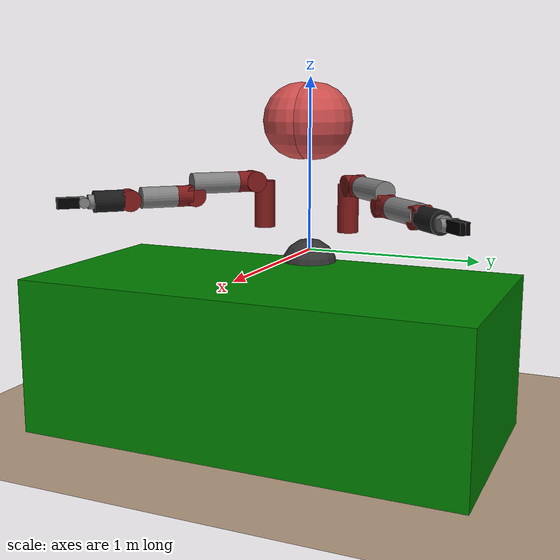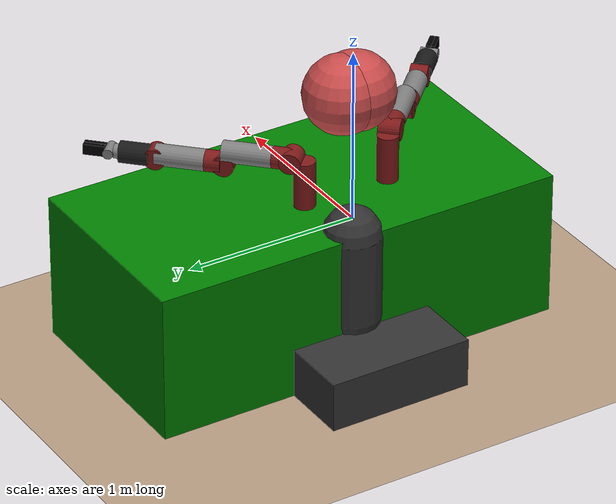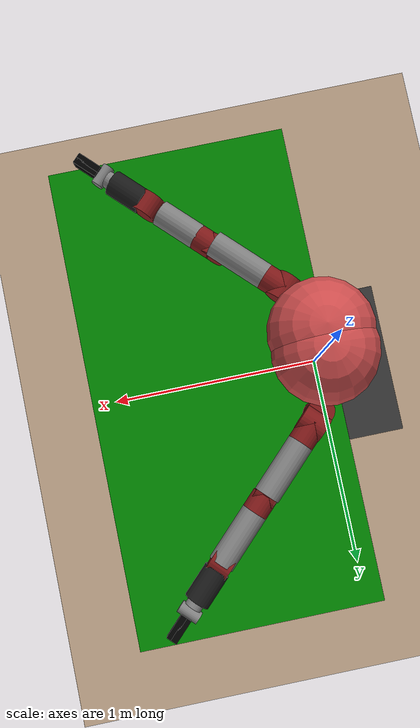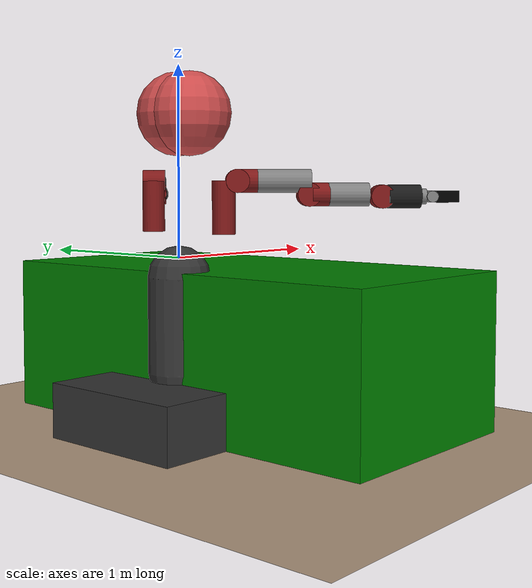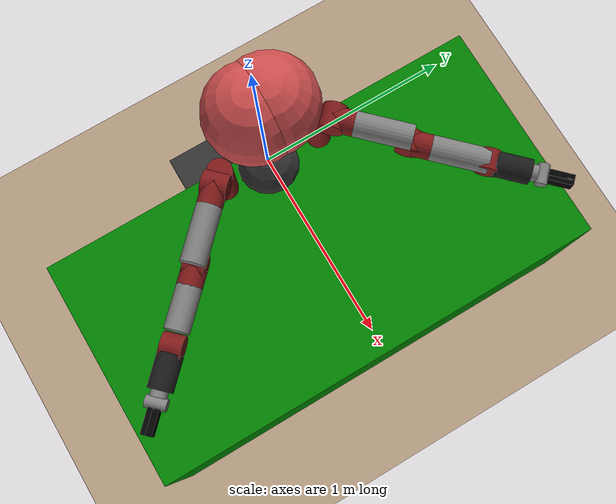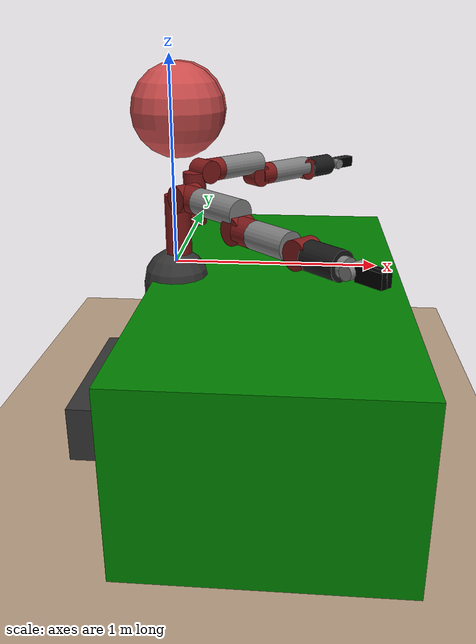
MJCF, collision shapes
<mujoco model="baxter">
  <size nconmax="250" njmax="795" nstack="631875" />
  <asset>
    <mesh file="robot_info/meshes/baxter/torso/base_link.STL" name="base_link" />
    <mesh file="robot_info/meshes/baxter/torso/base_link_collision.STL" name="base_link_collision" />
    <mesh file="robot_info/meshes/baxter/base/PEDESTAL.STL" name="PEDESTAL" />
    <mesh file="robot_info/meshes/baxter/base/pedestal_link_collision.STL" name="pedestal_link_collision" />
    <mesh file="robot_info/meshes/baxter/head/H0.STL" name="H0" />
    <mesh file="robot_info/meshes/baxter/head/H1.STL" name="H1" />
    <mesh file="robot_info/meshes/baxter/upper_shoulder/S0.STL" name="S0" />
    <mesh file="robot_info/meshes/baxter/lower_shoulder/S1.STL" name="S1" />
    <mesh file="robot_info/meshes/baxter/upper_elbow/E0.STL" name="E0" />
    <mesh file="robot_info/meshes/baxter/lower_elbow/E1.STL" name="E1" />
    <mesh file="robot_info/meshes/baxter/upper_forearm/W0.STL" name="W0" />
    <mesh file="robot_info/meshes/baxter/lower_forearm/W1.STL" name="W1" />
    <mesh file="robot_info/meshes/baxter/wrist/W2.STL" name="W2" />
    <mesh file="robot_info/meshes/baxter/electric_gripper/fingers/paddle_tip.STL" name="paddle_tip" />
    <mesh file="robot_info/meshes/baxter/electric_gripper/fingers/half_round_tip.STL" name="half_round_tip" />
    <mesh file="robot_info/meshes/baxter/electric_gripper/electric_gripper_base.STL" name="electric_gripper_base" />
    <mesh file="robot_info/meshes/baxter/electric_gripper/fingers/extended_narrow.STL" name="extended_narrow" />

  </asset>

  <visual>
    <map fogend="3" fogstart="1.5" />
    <quality shadowsize="2048" />
  </visual>

  <default>
    <default class="viz">
      <geom conaffinity="0" contype="0" group="1" margin="0.001" type="mesh" />
    </default>
    <geom condim="6" solimp="0.99 0.99 0.01" solref="0.01 1" />
  </default>

  <contact>
    <exclude body1="right_upper_shoulder" body2="torso" />
    <exclude body1="right_upper_shoulder" body2="right_upper_elbow" />
    <exclude body1="right_lower_shoulder" body2="torso" />
    <exclude body1="left_upper_shoulder" body2="torso" />
    <exclude body1="left_upper_shoulder" body2="left_upper_elbow" />
    <exclude body1="left_lower_shoulder" body2="torso" />
    <exclude body1="collision_head_link_1" body2="torso" />
    <exclude body1="collision_head_link_2" body2="torso" />
    <exclude body1="table" body2="torso" />
    <exclude body1="table" body2="pedestal" />
  </contact>

  <equality>
  </equality>

  <worldbody>
    <light ambient="0 0 0" cutoff="90" diffuse="1 1 1" dir="-1 0 -2.5" directional="false" exponent="1" pos="1 0 1.5" specular="0 0 0" />
    <geom name="ground" pos="0 0 -0.925" rgba="0.7 0.6 0.5 1" size="4 4 .05" type="plane" />
    <camera name="overhead_camera" pos="0.5 0.0 1.75" quat="0.707 0 0 -0.707" />

    <camera name="forward_camera" pos="2.5 0.0 0.35" quat="0.5 0.5 0.5 0.5" />

    <body name="base" pos="0 0 0">
      <inertial diaginertia="0.001 0.001 0.001" mass="10" pos="0 0 0" />
      <body name="collision_head_link_1" pos="0.11 0 0.75">
        <inertial diaginertia="1e-008 1e-008 1e-008" mass="0.0001" pos="0 0 0" />
        <geom class="viz" margin="0.001" pos="0 0 0" rgba="0.8 0.3 0.3 0.3" size="0.001" type="sphere" />
        <geom margin="0.001" pos="-0.07 -0.04 0" rgba="0.8 0.3 0.3 0.3" size="0.22" type="sphere" />
      </body>
      <body name="collision_head_link_2" pos="0.11 0 0.75">
        <inertial diaginertia="1e-008 1e-008 1e-008" mass="0.0001" pos="0 0 0" />
        <geom margin="0.001" pos="0 0 0" rgba="0.8 0.3 0.3 0.3" size="0.001" type="sphere" />
        <geom margin="0.001" pos="-0.07 0.04 0" rgba="0.8 0.3 0.3 0.3" size="0.22" type="sphere" />
      </body>
      <body name="torso" pos="0 0 0">
        <inertial diaginertia="1.87139 1.66268 0.779991" mass="35.3365" pos="0 0 0" quat="0.997433 0.00167178 0.0715546 -0.00209003" />
        <geom class="viz" margin="0.001" mesh="base_link" />
        <geom class="viz" margin="0.001" mesh="base_link_collision" type="mesh" />
        <body name="pedestal" pos="0 0 0">
          <inertial diaginertia="6.0869 5.81635 4.20915" mass="60.864" pos="0 0 0" quat="0.659267 -0.259505 -0.260945 0.655692" />
          <geom class="viz" margin="0.001" mesh="PEDESTAL" rgba="0.2 0.2 0.2 1" />
          <geom margin="0.001" pos="-.04 0 -.8" rgba="0.2 0.2 0.2 1" size=".46 .425 .16" type="box" />
          <geom margin="0.001" pos="0 0 -.35" rgba="0.2 0.2 0.2 1" size=".165 .25" type="capsule" />
        </body>
        <body name="head" pos="0.06 0 0.686">
          <inertial diaginertia="0.00474065 0.00461087 0.00199949" mass="0.547767" pos="0 0 0" quat="0.339345 0.850736 -0.347392 0.201027" />
          <joint armature=".01" axis="0 0 1" damping="0" limited="true" name="head_pan" pos="0 0 0" range="-1.5708 1.5708" type="hinge" />
          <geom class="viz" margin="0.001" mesh="H0" rgba="0.2 0.2 0.2 1" />
          <body name="screen" pos="0.1227 0 0" quat="0.453099 0.542864 0.542864 0.453099">
            <inertial diaginertia="0.0040484 0.00275826 0.00150834" mass="0.440171" pos="0 0 0" quat="0.995785 0.0113501 -0.000390852 0.0910132" />
            <geom class="viz" euler="0 -1.57 0" margin="0.001" mesh="H1" pos="0 0 -.03" rgba="0.5 0.1 0.1 1" />
            <geom class="viz" margin="0.001" name="display" pos="0 -0.016 0" quat="0.991445 0.130526 0 0" rgba=".9 .9 .9 1" size="0.109 0.08 0.002" type="box" />
          </body>
        </body>
        <body name="right_arm_mount" pos="0.024645 -0.219645 0.118588" quat="0.923879 0 0 -0.382684">
          <inertial diaginertia="1e-008 1e-008 1e-008" mass="0.0001" pos="0 0 0" />
          <body name="right_upper_shoulder" pos="0.055695 0 0.011038">
            <inertial diaginertia="0.0498344 0.0377511 0.0331351" mass="5.70044" pos="0.01783 0.00086 0.19127" quat="0.975667 0.0673303 -0.206117 0.0325173" />
            <joint armature=".01" axis="0 0 1" damping="0" limited="true" name="right_s0" pos="0 0 0" range="-1.70168 1.70168" type="hinge" />
            <geom class="viz" margin="0.001" mesh="S0" rgba="0.5 0.1 0.1 1" />
            <geom margin="0.001" pos="0 0 0.1361" rgba="0.5 0.1 0.1 1" size="0.06 0.1361" type="cylinder" />
            <body name="right_lower_shoulder" pos="0.069 0 0.27035" quat="0.707107 -0.707107 0 0">
              <inertial diaginertia="0.0278991 0.0212327 0.0112937" mass="3.22698" pos="0.06845 0.00269 -0.00529" quat="0.447487 0.536948 0.56425 0.439391" />
              <joint armature=".01" axis="0 0 1" damping="0" limited="true" name="right_s1" pos="0 0 0" range="-2.147 1.047" type="hinge" />
              <geom class="viz" margin="0.001" mesh="S1" rgba="0.5 0.1 0.1 1" />
              <geom margin="0.001" pos="0 0 0" rgba="0.5 0.1 0.1 1" size="0.06 0.06" type="cylinder" />
              <body name="right_upper_elbow" pos="0.102 0 0" quat="0.5 0.5 0.5 0.5">
                <inertial diaginertia="0.0287695 0.0273625 0.011409" mass="4.31272" pos="-0.00276 0.00132 0.18086" quat="0.838995 -0.0423128 -0.121287 0.52876" />
                <joint armature=".01" axis="0 0 1" damping="0" limited="true" name="right_e0" pos="0 0 0" range="-3.05418 3.05418" type="hinge" />
                <geom class="viz" margin="0.001" mesh="E0" rgba="0.5 0.1 0.1 1" />
                <geom margin="0.001" pos="0 0 -0.0535" rgba="0.5 0.1 0.1 1" size="0.06 0.0535" type="cylinder" />
                <geom class="viz" margin="0.001" name="right_upper_elbow_visual" pos="0 0 0.1365" size="0.06 0.1365" type="cylinder" />
                <body name="right_lower_elbow" pos="0.069 0 0.26242" quat="0.5 -0.5 -0.5 -0.5">
                  <inertial diaginertia="0.0132096 0.00950002 0.00685697" mass="2.07206" pos="0.02611 0.00159 -0.01117" quat="0.440433 0.577149 0.562777 0.395221" />
                  <joint armature=".01" axis="0 0 1" damping="0" limited="true" name="right_e1" pos="0 0 0" range="-0.05 2.618" type="hinge" />
                  <geom class="viz" margin="0.001" mesh="E1" rgba="0.5 0.1 0.1 1" />
                  <geom margin="0.001" pos="0 0 0" rgba="0.5 0.1 0.1 1" size="0.06 0.05" type="cylinder" />
                  <body name="right_upper_forearm" pos="0.10359 0 0" quat="0.5 0.5 0.5 0.5">
                    <inertial diaginertia="0.016916 0.0165511 0.00371123" mass="2.24665" pos="-0.00168 0.0046 0.13952" quat="0.892709 -0.0256256 0.00446984 0.449882" />
                    <joint armature=".01" axis="0 0 1" damping="0" limited="true" name="right_w0" pos="0 0 0" range="-3.059 3.059" type="hinge" />
                    <geom class="viz" margin="0.001" mesh="W0" rgba="0.5 0.1 0.1 1" />
                    <geom margin="0.001" pos="0 0 -0.044" rgba="0.5 0.1 0.1 1" size="0.06 0.044" type="cylinder" />
                    <geom class="viz" margin="0.001" name="right_upper_forearm_visual" pos="0 0 0.1" size="0.06 0.1036" type="cylinder" />
                    <body name="right_lower_forearm" pos="0.01 0 0.2707" quat="0.5 -0.5 -0.5 -0.5">
                      <inertial diaginertia="0.00708828 0.00552689 0.00379383" mass="1.60979" pos="0.06041 0.00697 0.006" quat="0.456911 0.468526 0.475683 0.587743" />
                      <joint armature=".01" axis="0 0 1" damping="0" limited="true" name="right_w1" pos="0 0 0" range="-1.5708 2.094" type="hinge" />
                      <geom class="viz" margin="0.001" mesh="W1" rgba="0.5 0.1 0.1 1" />
                      <geom margin="0.001" pos="0 0 0" rgba="0.5 0.1 0.1 1" size="0.06 0.05" type="cylinder" />
                      <body name="right_wrist" pos="0.115975 0 0" quat="0.5 0.5 0.5 0.5">
                        <inertial diaginertia="0.0003082 0.000269928 0.000251035" mass="0.35093" pos="0.00198 0.00125 0.01855" quat="0.0594843 0.68926 -0.16016 0.704082" />
                        <joint armature=".01" axis="0 0 1" damping="0" limited="true" name="right_w2" pos="0 0 0" range="-3.059 3.059" type="hinge" />
                        <geom class="viz" margin="0.001" mesh="W2" rgba="0.1 0.1 0.1 1" />
                        <geom margin="0.001" pos="0 0 0" rgba="0.1 0.1 0.1 1" size="0.06 0.0825" type="cylinder" />
                        <body name="right_hand" pos="0 0 0.11355">
                          <inertial diaginertia="0.000246058 0.000211549 0.000167391" mass="0.19125" pos="0.01093 0.00042 -0.01532" quat="0.025365 0.814618 0.0196357 0.579109" />
                          <geom pos="0 0 -0.0232" size="0.04 0.0232" type="cylinder" />

                          <body name="right_gripper_base" pos="0 0 0.025">
                            <camera euler="0 -3.14 1.57" name="right_camera" pos="-0.025 0.0 0.02" />
                            <inertial diaginertia="3e-08 2e-08 2e-08" mass="0.3" pos="0 0 0" quat="-0.5 0.5 0.5 0.5" />
                            <geom class="viz" mesh="electric_gripper_base" quat="0 0 0.707107 0.707107" />
                            <geom quat="0 0 0.707107 0.707107" size="0.029 0.05" type="cylinder" />
                            <body name="right_gripper" pos="0 0 0.1">
                                <inertial diaginertia="0 0 0" mass="0.0001" pos="0 0 0" />
                            </body>

                            <body name="right_gripper_l_finger" pos="0 -0.0015 0.02">
                              <inertial diaginertia="0.01 0.01 0.01" mass="0.02" pos="0 0 0" quat="0 0 0 -1" />
                              <joint armature=".01" axis="0 1 0" damping="0" limited="true" name="right_gripper_l_finger_joint" pos="0 0 0" range="0 0.030833" type="slide" />

                              <body name="right_gripper_l_finger_tip" pos="0 0.01725 0.1127">
                                <inertial diaginertia="0.01 0.01 0.01" mass="0.01" pos="0 0 0" quat="0 0 0 1" />
                                <geom class="viz" euler="-1.57 0 0" mesh="half_round_tip" pos="-.007 -.01 0.003" />

                                <geom pos="0 -0.0045 -0.05" quat="0 0 0 1" rgba="0 0 0 0" size="0.03 0.015 0.06" type="box" />
                              </body>
                            </body>
                            <body name="right_gripper_r_finger" pos="0 0.0015 0.02">
                              <inertial diaginertia="0.01 0.01 0.01" mass="0.02" pos="0 0 0" />
                              <joint armature=".01" axis="0 -1 0" damping="0" limited="true" name="right_gripper_r_finger_joint" pos="0 0 0" range="0 0.030833" type="slide" />

                              <body name="right_gripper_r_finger_tip" pos="0 -0.01725 0.1127">
                                <inertial diaginertia="0.01 0.01 0.01" mass="0.01" pos="0 0 0" />
                                <geom class="viz" euler="-1.57 3.14 0" mesh="half_round_tip" pos=".007 .01 0.003" />

                                <geom pos="0 0.0045 -0.05" quat="0 0 0 1" rgba="0 0 0 0" size="0.03 0.015 0.06" type="box" />
                              </body>
                            </body>
                          </body>
                        </body>
                      </body>
                    </body>
                  </body>
                </body>
              </body>
            </body>
          </body>
        </body>
        <body name="left_arm_mount" pos="0.024645 0.219645 0.118588" quat="0.923879 0 0 0.382684">
          <inertial diaginertia="1e-008 1e-008 1e-008" mass="0.0001" pos="0 0 0" />
          <body name="left_upper_shoulder" pos="0.055695 0 0.011038">
            <inertial diaginertia="0.0498344 0.0377511 0.0331351" mass="5.70044" pos="0.01783 0.00086 0.19127" quat="0.975667 0.0673303 -0.206117 0.0325173" />
            <joint armature=".01" axis="0 0 1" damping="0" limited="true" name="left_s0" pos="0 0 0" range="-1.70168 1.70168" type="hinge" />
            <geom class="viz" margin="0.001" mesh="S0" rgba="0.5 0.1 0.1 1" />
            <geom margin="0.001" pos="0 0 0.1361" rgba="0.5 0.1 0.1 1" size="0.06 0.1361" type="cylinder" />
            <body name="left_lower_shoulder" pos="0.069 0 0.27035" quat="0.707107 -0.707107 0 0">
              <inertial diaginertia="0.0278991 0.0212327 0.0112937" mass="3.22698" pos="0.06845 0.00269 -0.00529" quat="0.447487 0.536948 0.56425 0.439391" />
              <joint armature=".01" axis="0 0 1" damping="0" limited="true" name="left_s1" pos="0 0 0" range="-2.147 1.047" type="hinge" />
              <geom class="viz" margin="0.001" mesh="S1" rgba="0.5 0.1 0.1 1" />
              <geom margin="0.001" pos="0 0 0" rgba="0.5 0.1 0.1 1" size="0.06 0.06" type="cylinder" />
              <body name="left_upper_elbow" pos="0.102 0 0" quat="0.5 0.5 0.5 0.5">
                <inertial diaginertia="0.0287695 0.0273625 0.011409" mass="4.31272" pos="-0.00276 0.00132 0.18086" quat="0.838995 -0.0423128 -0.121287 0.52876" />
                <joint armature=".01" axis="0 0 1" damping="0" limited="true" name="left_e0" pos="0 0 0" range="-3.05418 3.05418" type="hinge" />
                <geom class="viz" margin="0.001" mesh="E0" rgba="0.5 0.1 0.1 1" />
                <geom margin="0.001" pos="0 0 -0.0535" rgba="0.5 0.1 0.1 1" size="0.06 0.0535" type="cylinder" />
                <geom class="viz" margin="0.001" name="left_upper_elbow_visual" pos="0 0 0.1365" size="0.06 0.1365" type="cylinder" />
                <body name="left_lower_elbow" pos="0.069 0 0.26242" quat="0.5 -0.5 -0.5 -0.5">
                  <inertial diaginertia="0.0132096 0.00950002 0.00685697" mass="2.07206" pos="0.02611 0.00159 -0.01117" quat="0.440433 0.577149 0.562777 0.395221" />
                  <joint armature=".01" axis="0 0 1" damping="0" limited="true" name="left_e1" pos="0 0 0" range="-0.05 2.618" type="hinge" />
                  <geom class="viz" margin="0.001" mesh="E1" rgba="0.5 0.1 0.1 1" />
                  <geom margin="0.001" pos="0 0 0" rgba="0.5 0.1 0.1 1" size="0.06 0.05" type="cylinder" />
                  <body name="left_upper_forearm" pos="0.10359 0 0" quat="0.5 0.5 0.5 0.5">
                    <inertial diaginertia="0.016916 0.0165511 0.00371123" mass="2.24665" pos="-0.00168 0.0046 0.13952" quat="0.892709 -0.0256256 0.00446984 0.449882" />
                    <joint armature=".01" axis="0 0 1" damping="0" limited="true" name="left_w0" pos="0 0 0" range="-3.059 3.059" type="hinge" />
                    <geom class="viz" margin="0.001" mesh="W0" rgba="0.5 0.1 0.1 1" />
                    <geom margin="0.001" pos="0 0 -0.044" rgba="0.5 0.1 0.1 1" size="0.06 0.044" type="cylinder" />
                    <geom class="viz" margin="0.001" name="left_upper_forearm_visual" pos="0 0 0.136" size="0.06 0.136" type="cylinder" />
                    <body name="left_lower_forearm" pos="0.01 0 0.2707" quat="0.5 -0.5 -0.5 -0.5">
                      <inertial diaginertia="0.00708828 0.00552689 0.00379383" mass="1.60979" pos="0.06041 0.00697 0.006" quat="0.456911 0.468526 0.475683 0.587743" />
                      <joint armature=".01" axis="0 0 1" damping="0" limited="true" name="left_w1" pos="0 0 0" range="-1.5708 2.094" type="hinge" />
                      <geom class="viz" margin="0.001" mesh="W1" rgba="0.5 0.1 0.1 1" />
                      <geom margin="0.001" pos="0 0 0" rgba="0.5 0.1 0.1 1" size="0.06 0.05" type="cylinder" />
                      <body name="left_wrist" pos="0.115975 0 0" quat="0.5 0.5 0.5 0.5">
                        <inertial diaginertia="0.0003082 0.000269928 0.000251035" mass="0.35093" pos="0.00198 0.00125 0.01855" quat="0.0594843 0.68926 -0.16016 0.704082" />
                        <joint armature=".01" axis="0 0 1" damping="0" limited="true" name="left_w2" pos="0 0 0" range="-3.059 3.059" type="hinge" />
                        <geom class="viz" margin="0.001" mesh="W2" rgba="0.1 0.1 0.1 1" />
                        <geom margin="0.001" pos="0 0 0" rgba="0.1 0.1 0.1 1" size="0.06 0.0825" type="cylinder" />
                        <body name="left_hand" pos="0 0 0.11355">
                          <inertial diaginertia="0.000246058 0.000211549 0.000167391" mass="0.19125" pos="0.01093 0.00042 -0.01532" quat="0.025365 0.814618 0.0196357 0.579109" />
                          <geom pos="0 0 -0.0232" size="0.04 0.0232" type="cylinder" />

                          <body name="left_gripper_base" pos="0 0 0.025">
                            <camera euler="0 -3.14 1.57" name="left_camera" pos="-0.025 0.0 0.02" />
                            <inertial diaginertia="3e-08 2e-08 2e-08" mass="0.3" pos="0 0 0" quat="-0.5 0.5 0.5 0.5" />
                            <geom class="viz" mesh="electric_gripper_base" quat="0 0 0.707107 0.707107" />
                            <geom quat="0 0 0.707107 0.707107" size="0.029 0.05" type="cylinder" />
                            <body name="left_gripper" pos="0 0 0.1">
                                <inertial diaginertia="0 0 0" mass="0.0001" pos="0 0 0" />
                            </body>

                            <body name="left_gripper_l_finger" pos="0 -0.0015 0.02">
                                <joint armature=".01" axis="0 1 0" damping="0" limited="true" name="left_gripper_l_finger_joint" pos="0 0 0" range="0 0.030833" type="slide" />

                                <body name="left_gripper_l_finger_tip" pos="0 0.01725 0.1127">
                                    <geom class="viz" euler="-1.57 0 0" mesh="paddle_tip" pos="-.02 -.009 0.003" />
                                    <geom pos="0 -0.0045 -0.05" quat="0 0 0 1" rgba="0 0 0 0" size="0.03 0.015 0.06" type="box" />
                                </body>
                            </body>
                            <body name="left_gripper_r_finger" pos="0 0.0015 0.02">
                                <joint armature=".01" axis="0 -1 0" damping="0" limited="true" name="left_gripper_r_finger_joint" pos="0 0 0" range="0 0.030833" type="slide" />

                                <body name="left_gripper_r_finger_tip" pos="0 -0.01725 0.1127">
                                    <geom class="viz" euler="-1.57 3.14 0" mesh="paddle_tip" pos=".02 .009 0.003" />

                                    <geom pos="0 0.0045 -0.05" quat="0 0 0 1" rgba="0 0 0 0" size="0.03 0.015 0.06" type="box" />
                                </body>
                            </body>
                          </body>
                        </body>
                      </body>
                    </body>
                  </body>
                </body>
              </body>
            </body>
          </body>
        </body>
      </body>
    </body>

  <body name="free_body_cloth0">
                    <freejoint name="cloth0" />
                    <body name="cloth0" pos="0 0 0" quat="1 0 0 0">
                        <geom friction="1 1 0.01" name="cloth0" rgba="1   1   1   1 " size="0.02 0.02 0.02 " type="box" />
                    </body>
                </body><body name="table" pos="0.515 0 -0.555" quat="1 0 0 0">
                <geom name="table" rgba="0 0.5 0 1 " size="0.615 1.225 0.485 " type="box" />
            </body></worldbody>

  <actuator>

    <velocity ctrllimited="true" ctrlrange="-2 2" joint="right_s0" kv="60" />
    <velocity ctrllimited="true" ctrlrange="-2 2" joint="right_s1" kv="100" />
    <velocity ctrllimited="true" ctrlrange="-2 2" joint="right_e0" kv="20" />
    <velocity ctrllimited="true" ctrlrange="-2 2" joint="right_e1" kv="20" />
    <velocity ctrllimited="true" ctrlrange="-4 4" joint="right_w0" kv="5" />
    <velocity ctrllimited="true" ctrlrange="-4 4" joint="right_w1" kv="5" />
    <velocity ctrllimited="true" ctrlrange="-4 4" joint="right_w2" kv="5" />

    <motor ctrllimited="true" ctrlrange="-500 500" joint="right_gripper_l_finger_joint" />
    <motor ctrllimited="true" ctrlrange="-500 500" joint="right_gripper_r_finger_joint" />

    <velocity ctrllimited="true" ctrlrange="-2 2" joint="left_s0" kv="60" />
    <velocity ctrllimited="true" ctrlrange="-2 2" joint="left_s1" kv="100" />
    <velocity ctrllimited="true" ctrlrange="-2 2" joint="left_e0" kv="20" />
    <velocity ctrllimited="true" ctrlrange="-2 2" joint="left_e1" kv="20" />
    <velocity ctrllimited="true" ctrlrange="-4 4" joint="left_w0" kv="5" />
    <velocity ctrllimited="true" ctrlrange="-4 4" joint="left_w1" kv="5" />
    <velocity ctrllimited="true" ctrlrange="-4 4" joint="left_w2" kv="5" />

    <motor ctrllimited="true" ctrlrange="-500 500" joint="left_gripper_l_finger_joint" />
    <motor ctrllimited="true" ctrlrange="-500 500" joint="left_gripper_r_finger_joint" />

</actuator>

<compiler angle="radian" coordinate="local" meshdir="/home/michaelmcdonald/Documents/BaxterGym/baxter_gym/" strippath="false" texturedir="textures/" /><option gravity="0 0 -9.81" integrator="Euler" noslip_iterations="0" solver="Newton" timestep="0.002" /></mujoco>
